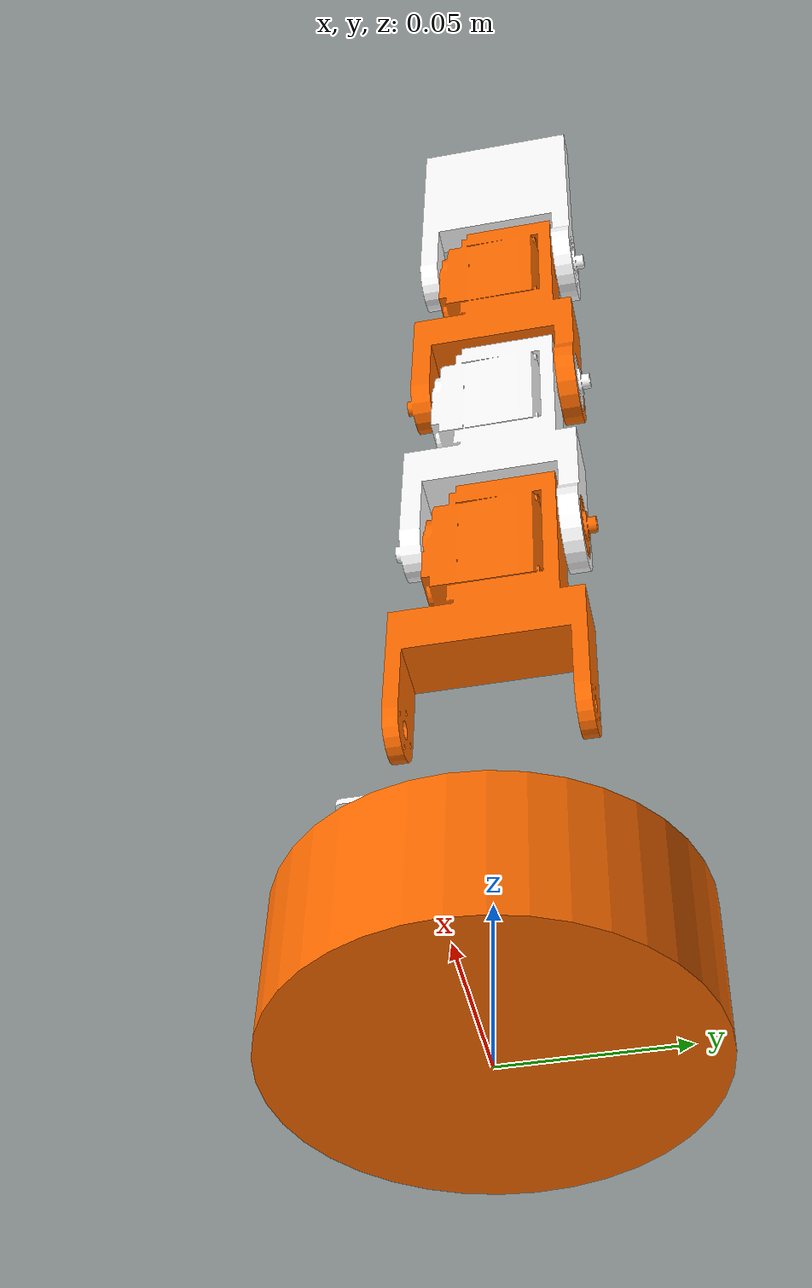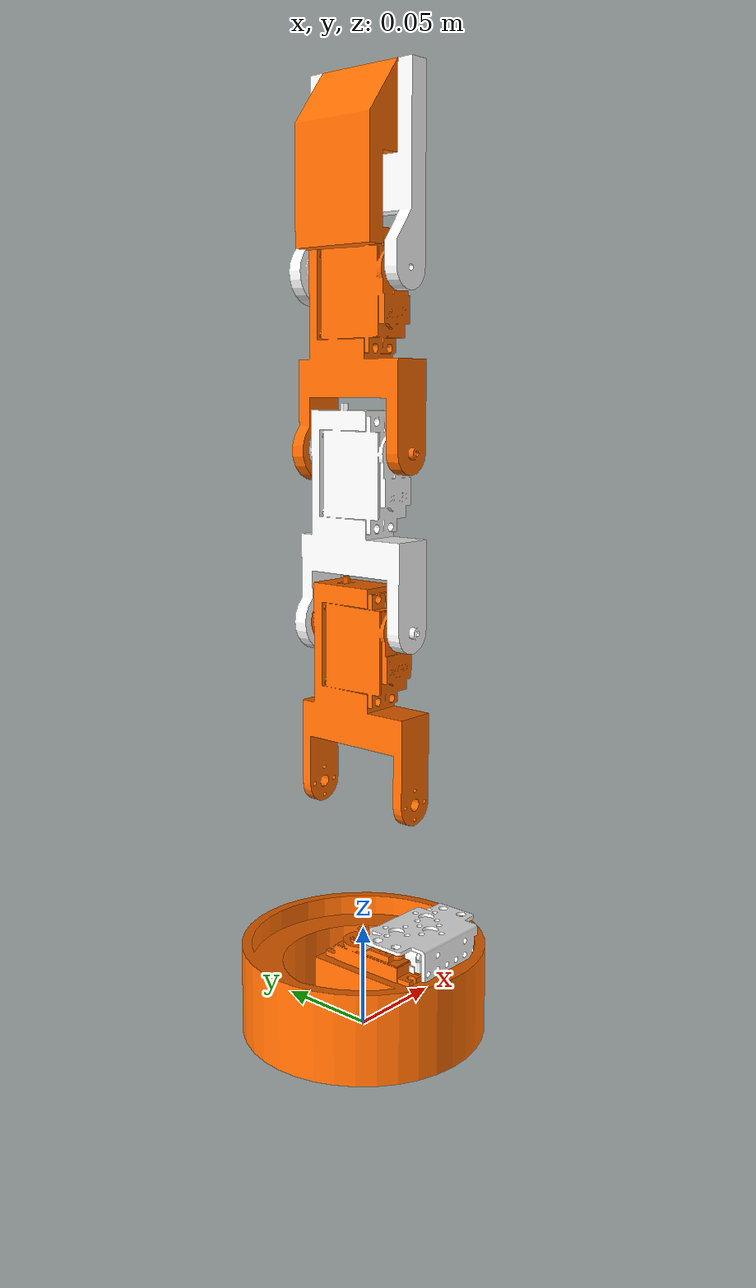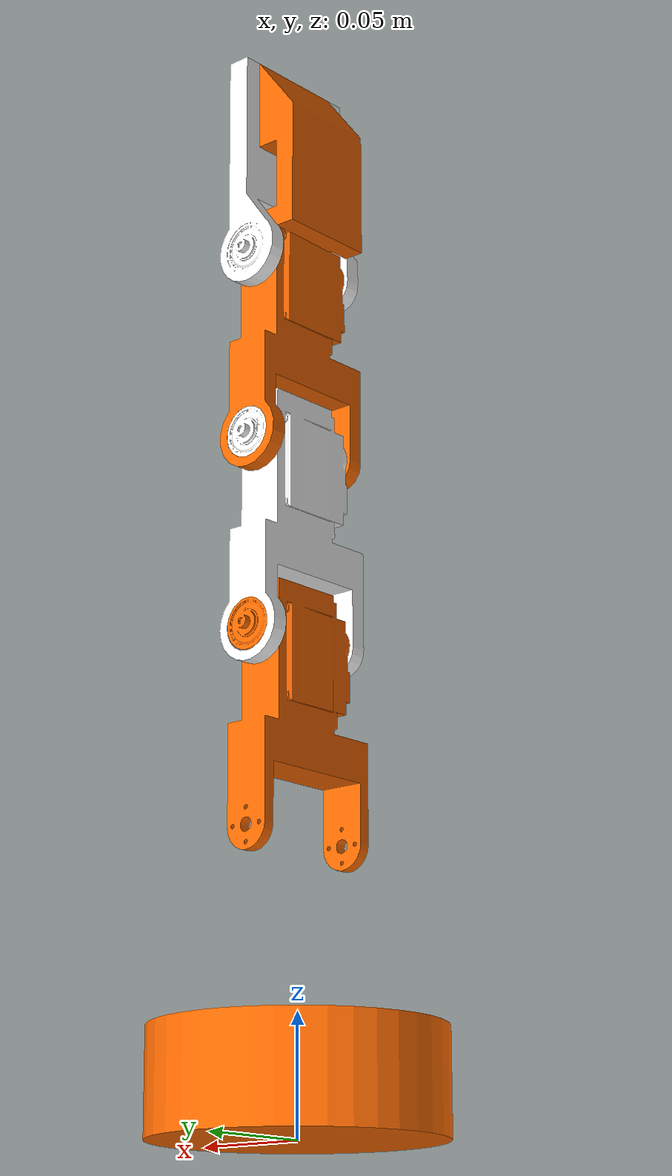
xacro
<?xml version="1.0"?>
<robot name="myrobot_description" xmlns:xacro="http://www.ros.org/wiki/xacro">

  <!-- Arguments to configure the robot behavior -->
  <xacro:arg name="use_mock_hardware" default="true" />

  <!-- 1. Include the geometric description macro of the manipulator arm -->
  <xacro:include filename="$(find myrobot_description)/urdf/myrobot_geometry.urdf.xacro" />

  <!-- 2. Instantiate the standalone arm with root link 'base_link' -->
  <xacro:myrobot_arm base_link_name="base_link" parent="">
    <origin xyz="0.0 0.0 0.0" rpy="0.0 0.0 0.0" />
  </xacro:myrobot_arm>

  <!-- 3. Include and instantiate the ros2_control configuration -->
  <xacro:include filename="$(find myrobot_description)/urdf/myrobot.ros2_control.xacro" />
  <xacro:myrobot_ros2_control name="FakeSystem" use_mock_hardware="$(arg use_mock_hardware)" />

</robot>

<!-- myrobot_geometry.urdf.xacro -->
<robot name="myrobot_description" xmlns:xacro="http://www.ros.org/wiki/xacro">

  <!-- Global Material Definitions -->
  <material name="orange">
    <color rgba="1.0 0.42 0.0 1.0"/>
  </material>

  <material name="white">
    <color rgba="1.0 1.0 1.0 1.0"/>
  </material>

  <!-- Default Joint Dynamics Constants -->
  <xacro:property name="ARM_DEFAULT_JOINT_DAMPING" value="0.5" />
  <xacro:property name="ARM_DEFAULT_JOINT_FRICTION" value="0.2" />

  <!-- Reusable 5-DOF Manipulator Arm Macro -->
  <xacro:macro
    name="myrobot_arm"
    params="base_link_name:=base_link parent:='' joint_damping:=${ARM_DEFAULT_JOINT_DAMPING} joint_friction:=${ARM_DEFAULT_JOINT_FRICTION} *origin">

    <xacro:if value="${parent != ''}">
      <joint name="arm_mount_joint" type="fixed">
        <parent link="${parent}" />
        <child link="${base_link_name}" />
        <xacro:insert_block name="origin" />
      </joint>
    </xacro:if>

    <link
      name="${base_link_name}">
      <inertial>
        <origin
          xyz="-7.9193E-11 -0.0016014 0.017944"
          rpy="0 0 0" />
        <mass
          value="0.42675" />
        <inertia
          ixx="0.0005265"
          ixy="-3.3358E-13"
          ixz="-5.5903E-13"
          iyy="0.00051117"
          iyz="4.5128E-07"
          izz="0.00092668" />
      </inertial>
      <visual>
        <origin
          xyz="0 0 0"
          rpy="0 0 0" />
        <geometry>
          <mesh
            filename="package://myrobot_description/meshes/base_link.STL" />
        </geometry>
        <material name="orange"/>
      </visual>
      <collision>
        <origin
          xyz="0 0 0"
          rpy="0 0 0" />
        <geometry>
          <mesh
            filename="package://myrobot_description/meshes/base_link.STL" />
        </geometry>
      </collision>
    </link>
    <link
      name="Link1">
      <inertial>
        <origin
          xyz="-2.48993806827025E-06 -3.22182262536969E-05 0.0271642940472743"
          rpy="0 0 0" />
        <mass
          value="0.262216178032436" />
        <inertia
          ixx="0.000288770392771685"
          ixy="2.04810102253144E-10"
          ixz="2.11668502786579E-10"
          iyy="0.0002875161116019"
          iyz="-2.57354557885949E-08"
          izz="0.000434288685452672" />
      </inertial>
      <visual>
        <origin
          xyz="0 0 0"
          rpy="0 0 0" />
        <geometry>
          <mesh
            filename="package://myrobot_description/meshes/Link1.STL" />
        </geometry>
        <material name="white"/>
      </visual>
      <collision>
        <origin
          xyz="0 0 0"
          rpy="0 0 0" />
        <geometry>
          <mesh
            filename="package://myrobot_description/meshes/Link1.STL" />
        </geometry>
      </collision>
    </link>
    <joint
      name="Joint1"
      type="revolute">
      <origin
        xyz="0 3.8106E-05 0.0495"
        rpy="0 0 0" />
      <parent
        link="${base_link_name}" />
      <child
        link="Link1" />
      <axis
        xyz="0 0 1" />
      <limit
        lower="-3.14"
        upper="3.14"
        effort="12"
        velocity="5" />
      <dynamics
        damping="${joint_damping}"
        friction="${joint_friction}" />
    </joint>
    <link
      name="Link2">
      <inertial>
        <origin
          xyz="0.0538413370060857 -2.10656170979151E-09 -0.00253255278449989"
          rpy="0 0 0" />
        <mass
          value="0.095315907620755" />
        <inertia
          ixx="2.87880584513634E-05"
          ixy="1.64496152864071E-12"
          ixz="6.85207118883652E-06"
          iyy="7.32411125799549E-05"
          iyz="4.49574634323387E-13"
          izz="5.07633269464637E-05" />
      </inertial>
      <visual>
        <origin
          xyz="0 0 0"
          rpy="0 0 0" />
        <geometry>
          <mesh
            filename="package://myrobot_description/meshes/Link2.STL" />
        </geometry>
        <material name="orange"/>
      </visual>
      <collision>
        <origin
          xyz="0 0 0"
          rpy="0 0 0" />
        <geometry>
          <mesh
            filename="package://myrobot_description/meshes/Link2.STL" />
        </geometry>
      </collision>
    </link>
    <joint
      name="Joint2"
      type="revolute">
      <origin
        xyz="0 -0.00068811 0.0704"
        rpy="1.5708 -1.5708 0" />
      <parent
        link="Link1" />
      <child
        link="Link2" />
      <axis
        xyz="0 0 1" />
      <limit
        lower="-3.14"
        upper="3.14"
        effort="2.5"
        velocity="5" />
      <dynamics
        damping="${joint_damping}"
        friction="${joint_friction}" />
    </joint>
    <link
      name="Link3">
      <inertial>
        <origin
          xyz="0.0524781943225279 -1.59401423172056E-08 -0.00219363255264805"
          rpy="0 0 0" />
        <mass
          value="0.0975200910300232" />
        <inertia
          ixx="2.95891252035946E-05"
          ixy="4.66269371854454E-13"
          ixz="7.92586386256351E-06"
          iyy="7.83797564145377E-05"
          iyz="-1.7698721510079E-13"
          izz="5.55929187863546E-05" />
      </inertial>
      <visual>
        <origin
          xyz="0 0 0"
          rpy="0 0 0" />
        <geometry>
          <mesh
            filename="package://myrobot_description/meshes/Link3.STL" />
        </geometry>
        <material name="white"/>
      </visual>
      <collision>
        <origin
          xyz="0 0 0"
          rpy="0 0 0" />
        <geometry>
          <mesh
            filename="package://myrobot_description/meshes/Link3.STL" />
        </geometry>
      </collision>
    </link>
    <joint
      name="Joint3"
      type="revolute">
      <origin
        xyz="0.082 0 -0.001"
        rpy="0 0 0" />
      <parent
        link="Link2" />
      <child
        link="Link3" />
      <axis
        xyz="0 0 1" />
      <limit
        lower="-3.14"
        upper="3.14"
        effort="12"
        velocity="5" />
      <dynamics
        damping="${joint_damping}"
        friction="${joint_friction}" />
    </joint>
    <link
      name="Link4">
      <inertial>
        <origin
          xyz="0.0819905431552108 0.00396064974324239 -0.00145094408938291"
          rpy="0 0 0" />
        <mass
          value="0.152167844385681" />
        <inertia
          ixx="4.43098616467402E-05"
          ixy="-2.55282292408061E-05"
          ixz="1.30468333376975E-06"
          iyy="0.000358872029653601"
          iyz="-7.77827054811303E-07"
          izz="0.000331430975437797" />
      </inertial>
      <visual>
        <origin
          xyz="0 0 0"
          rpy="0 0 0" />
        <geometry>
          <mesh
            filename="package://myrobot_description/meshes/Link4.STL" />
        </geometry>
        <material name="orange"/>
      </visual>
      <collision>
        <origin
          xyz="0 0 0"
          rpy="0 0 0" />
        <geometry>
          <mesh
            filename="package://myrobot_description/meshes/Link4.STL" />
        </geometry>
      </collision>
    </link>
    <joint
      name="Joint4"
      type="revolute">
      <origin
        xyz="0.0825 0 -0.001"
        rpy="0 0 0" />
      <parent
        link="Link3" />
      <child
        link="Link4" />
      <axis
        xyz="0 0 1" />
      <limit
        lower="-3.14"
        upper="3.14"
        effort="12"
        velocity="5" />
      <dynamics
        damping="${joint_damping}"
        friction="${joint_friction}" />
    </joint>
    <link
      name="Link5">
      <inertial>
        <origin
          xyz="0.0482893143441747 -0.00424320513863131 -0.00034467471522126"
          rpy="0 0 0" />
        <mass
          value="0.0685033308119085" />
        <inertia
          ixx="2.62897349154238E-05"
          ixy="1.96552403132734E-06"
          ixz="8.52900238237812E-07"
          iyy="6.88702494219954E-05"
          iyz="-1.044222885868E-07"
          izz="4.48991503582136E-05" />
      </inertial>
      <visual>
        <origin
          xyz="0 0 0"
          rpy="0 0 0" />
        <geometry>
          <mesh
            filename="package://myrobot_description/meshes/Link5.STL" />
        </geometry>
        <material name="white"/>
      </visual>
      <collision>
        <origin
          xyz="0 0 0"
          rpy="0 0 0" />
        <geometry>
          <mesh
            filename="package://myrobot_description/meshes/Link5.STL" />
        </geometry>
      </collision>
    </link>
    <joint
      name="Joint5"
      type="revolute">
      <origin
        xyz="0.0825 0 -0.001"
        rpy="0 0 0" />
      <parent
        link="Link4" />
      <child
        link="Link5" />
      <axis
        xyz="0 0 1" />
      <limit
        lower="-3.14"
        upper="3.14"
        effort="12"
        velocity="5" />
      <dynamics
        damping="${joint_damping}"
        friction="${joint_friction}" />
    </joint>
  </xacro:macro>

</robot>
